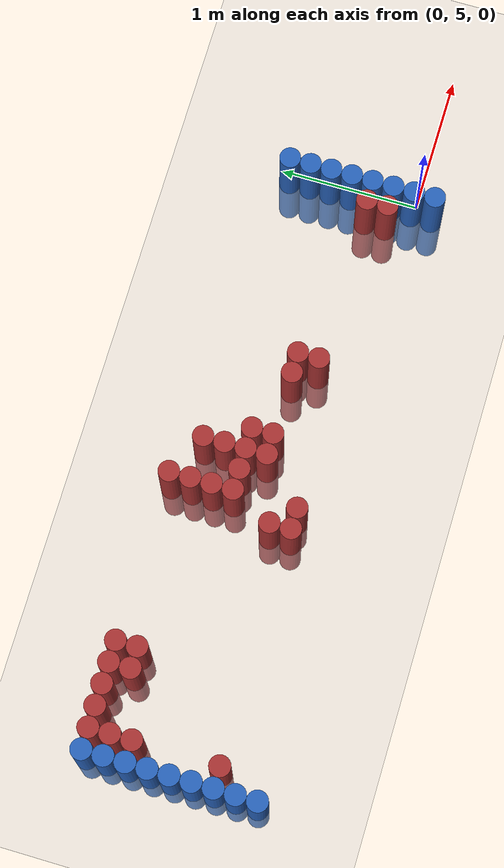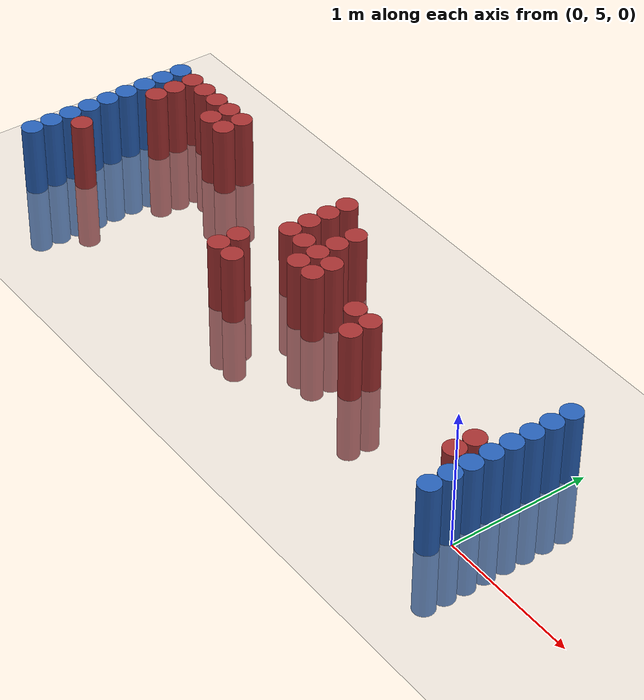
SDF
<sdf version="1.6">
 <world name="world_48">
  <model name="ground_plane">
   <static>1</static>
   <link name="link">
    <collision name="collision">
     <geometry><plane><normal>0 0 1</normal><size>100 100</size></plane></geometry>
     <surface><friction><ode><mu>100</mu><mu2>50</mu2></ode></friction></surface>
    </collision>
    <visual name="visual">
     <cast_shadows>0</cast_shadows>
     <geometry><plane><normal>0 0 1</normal><size>100 100</size></plane></geometry>
     <material>
      <script><uri>file://media/materials/scripts/gazebo.material</uri><name>Gazebo/Grey</name></script>
     </material>
    </visual>
   </link>
  </model>
  <model name="unit_cylinder_92">
   <static>1</static>
   <pose>-0.075000 4.875000 0.000000 0.000000 0.000000 0.000000</pose>
   <link name="link">
    <inertial>
     <mass>1</mass>
     <inertia><ixx>0.145833</ixx><ixy>0</ixy><ixz>0</ixz><iyy>0.145833</iyy><iyz>0</iyz><izz>0.125</izz></inertia>
    </inertial>
    <collision name="collision">
     <geometry><cylinder><radius>0.075000</radius><length>1</length></cylinder></geometry>
    </collision>
    <visual name="visual">
     <geometry><cylinder><radius>0.075000</radius><length>1</length></cylinder></geometry>
     <material>
      <ambient>0.152000 0.379000 0.720000 1</ambient>
      <diffuse>0.152000 0.379000 0.720000 1</diffuse>
     </material>
     <material>
      <script><name>Gazebo/Grey</name><uri>file://media/materials/scripts/gazebo.material</uri></script>
     </material>
    </visual>
   </link>
  </model>
  <model name="unit_cylinder_93">
   <static>1</static>
   <pose>-4.425000 4.875000 0.000000 0.000000 0.000000 0.000000</pose>
   <link name="link">
    <inertial>
     <mass>1</mass>
     <inertia><ixx>0.145833</ixx><ixy>0</ixy><ixz>0</ixz><iyy>0.145833</iyy><iyz>0</iyz><izz>0.125</izz></inertia>
    </inertial>
    <collision name="collision">
     <geometry><cylinder><radius>0.075000</radius><length>1</length></cylinder></geometry>
    </collision>
    <visual name="visual">
     <geometry><cylinder><radius>0.075000</radius><length>1</length></cylinder></geometry>
     <material>
      <ambient>0.152000 0.379000 0.720000 1</ambient>
      <diffuse>0.152000 0.379000 0.720000 1</diffuse>
     </material>
     <material>
      <script><name>Gazebo/Grey</name><uri>file://media/materials/scripts/gazebo.material</uri></script>
     </material>
    </visual>
   </link>
  </model>
  <model name="unit_cylinder_94">
   <static>1</static>
   <pose>-0.075000 5.025000 0.000000 0.000000 0.000000 0.000000</pose>
   <link name="link">
    <inertial>
     <mass>1</mass>
     <inertia><ixx>0.145833</ixx><ixy>0</ixy><ixz>0</ixz><iyy>0.145833</iyy><iyz>0</iyz><izz>0.125</izz></inertia>
    </inertial>
    <collision name="collision">
     <geometry><cylinder><radius>0.075000</radius><length>1</length></cylinder></geometry>
    </collision>
    <visual name="visual">
     <geometry><cylinder><radius>0.075000</radius><length>1</length></cylinder></geometry>
     <material>
      <ambient>0.152000 0.379000 0.720000 1</ambient>
      <diffuse>0.152000 0.379000 0.720000 1</diffuse>
     </material>
     <material>
      <script><name>Gazebo/Grey</name><uri>file://media/materials/scripts/gazebo.material</uri></script>
     </material>
    </visual>
   </link>
  </model>
  <model name="unit_cylinder_95">
   <static>1</static>
   <pose>-4.425000 5.025000 0.000000 0.000000 0.000000 0.000000</pose>
   <link name="link">
    <inertial>
     <mass>1</mass>
     <inertia><ixx>0.145833</ixx><ixy>0</ixy><ixz>0</ixz><iyy>0.145833</iyy><iyz>0</iyz><izz>0.125</izz></inertia>
    </inertial>
    <collision name="collision">
     <geometry><cylinder><radius>0.075000</radius><length>1</length></cylinder></geometry>
    </collision>
    <visual name="visual">
     <geometry><cylinder><radius>0.075000</radius><length>1</length></cylinder></geometry>
     <material>
      <ambient>0.152000 0.379000 0.720000 1</ambient>
      <diffuse>0.152000 0.379000 0.720000 1</diffuse>
     </material>
     <material>
      <script><name>Gazebo/Grey</name><uri>file://media/materials/scripts/gazebo.material</uri></script>
     </material>
    </visual>
   </link>
  </model>
  <model name="unit_cylinder_96">
   <static>1</static>
   <pose>-4.425000 5.175000 0.000000 0.000000 0.000000 0.000000</pose>
   <link name="link">
    <inertial>
     <mass>1</mass>
     <inertia><ixx>0.145833</ixx><ixy>0</ixy><ixz>0</ixz><iyy>0.145833</iyy><iyz>0</iyz><izz>0.125</izz></inertia>
    </inertial>
    <collision name="collision">
     <geometry><cylinder><radius>0.075000</radius><length>1</length></cylinder></geometry>
    </collision>
    <visual name="visual">
     <geometry><cylinder><radius>0.075000</radius><length>1</length></cylinder></geometry>
     <material>
      <ambient>0.152000 0.379000 0.720000 1</ambient>
      <diffuse>0.152000 0.379000 0.720000 1</diffuse>
     </material>
     <material>
      <script><name>Gazebo/Grey</name><uri>file://media/materials/scripts/gazebo.material</uri></script>
     </material>
    </visual>
   </link>
  </model>
  <model name="unit_cylinder_97">
   <static>1</static>
   <pose>-4.425000 5.325000 0.000000 0.000000 0.000000 0.000000</pose>
   <link name="link">
    <inertial>
     <mass>1</mass>
     <inertia><ixx>0.145833</ixx><ixy>0</ixy><ixz>0</ixz><iyy>0.145833</iyy><iyz>0</iyz><izz>0.125</izz></inertia>
    </inertial>
    <collision name="collision">
     <geometry><cylinder><radius>0.075000</radius><length>1</length></cylinder></geometry>
    </collision>
    <visual name="visual">
     <geometry><cylinder><radius>0.075000</radius><length>1</length></cylinder></geometry>
     <material>
      <ambient>0.152000 0.379000 0.720000 1</ambient>
      <diffuse>0.152000 0.379000 0.720000 1</diffuse>
     </material>
     <material>
      <script><name>Gazebo/Grey</name><uri>file://media/materials/scripts/gazebo.material</uri></script>
     </material>
    </visual>
   </link>
  </model>
  <model name="unit_cylinder_98">
   <static>1</static>
   <pose>-4.425000 5.475000 0.000000 0.000000 0.000000 0.000000</pose>
   <link name="link">
    <inertial>
     <mass>1</mass>
     <inertia><ixx>0.145833</ixx><ixy>0</ixy><ixz>0</ixz><iyy>0.145833</iyy><iyz>0</iyz><izz>0.125</izz></inertia>
    </inertial>
    <collision name="collision">
     <geometry><cylinder><radius>0.075000</radius><length>1</length></cylinder></geometry>
    </collision>
    <visual name="visual">
     <geometry><cylinder><radius>0.075000</radius><length>1</length></cylinder></geometry>
     <material>
      <ambient>0.152000 0.379000 0.720000 1</ambient>
      <diffuse>0.152000 0.379000 0.720000 1</diffuse>
     </material>
     <material>
      <script><name>Gazebo/Grey</name><uri>file://media/materials/scripts/gazebo.material</uri></script>
     </material>
    </visual>
   </link>
  </model>
  <model name="unit_cylinder_99">
   <static>1</static>
   <pose>-4.425000 5.625000 0.000000 0.000000 0.000000 0.000000</pose>
   <link name="link">
    <inertial>
     <mass>1</mass>
     <inertia><ixx>0.145833</ixx><ixy>0</ixy><ixz>0</ixz><iyy>0.145833</iyy><iyz>0</iyz><izz>0.125</izz></inertia>
    </inertial>
    <collision name="collision">
     <geometry><cylinder><radius>0.075000</radius><length>1</length></cylinder></geometry>
    </collision>
    <visual name="visual">
     <geometry><cylinder><radius>0.075000</radius><length>1</length></cylinder></geometry>
     <material>
      <ambient>0.152000 0.379000 0.720000 1</ambient>
      <diffuse>0.152000 0.379000 0.720000 1</diffuse>
     </material>
     <material>
      <script><name>Gazebo/Grey</name><uri>file://media/materials/scripts/gazebo.material</uri></script>
     </material>
    </visual>
   </link>
  </model>
  <model name="unit_cylinder_100">
   <static>1</static>
   <pose>-4.425000 5.775000 0.000000 0.000000 0.000000 0.000000</pose>
   <link name="link">
    <inertial>
     <mass>1</mass>
     <inertia><ixx>0.145833</ixx><ixy>0</ixy><ixz>0</ixz><iyy>0.145833</iyy><iyz>0</iyz><izz>0.125</izz></inertia>
    </inertial>
    <collision name="collision">
     <geometry><cylinder><radius>0.075000</radius><length>1</length></cylinder></geometry>
    </collision>
    <visual name="visual">
     <geometry><cylinder><radius>0.075000</radius><length>1</length></cylinder></geometry>
     <material>
      <ambient>0.152000 0.379000 0.720000 1</ambient>
      <diffuse>0.152000 0.379000 0.720000 1</diffuse>
     </material>
     <material>
      <script><name>Gazebo/Grey</name><uri>file://media/materials/scripts/gazebo.material</uri></script>
     </material>
    </visual>
   </link>
  </model>
  <model name="unit_cylinder_101">
   <static>1</static>
   <pose>-4.425000 5.925000 0.000000 0.000000 0.000000 0.000000</pose>
   <link name="link">
    <inertial>
     <mass>1</mass>
     <inertia><ixx>0.145833</ixx><ixy>0</ixy><ixz>0</ixz><iyy>0.145833</iyy><iyz>0</iyz><izz>0.125</izz></inertia>
    </inertial>
    <collision name="collision">
     <geometry><cylinder><radius>0.075000</radius><length>1</length></cylinder></geometry>
    </collision>
    <visual name="visual">
     <geometry><cylinder><radius>0.075000</radius><length>1</length></cylinder></geometry>
     <material>
      <ambient>0.152000 0.379000 0.720000 1</ambient>
      <diffuse>0.152000 0.379000 0.720000 1</diffuse>
     </material>
     <material>
      <script><name>Gazebo/Grey</name><uri>file://media/materials/scripts/gazebo.material</uri></script>
     </material>
    </visual>
   </link>
  </model>
  <model name="unit_cylinder_102">
   <static>1</static>
   <pose>-4.425000 6.075000 0.000000 0.000000 0.000000 0.000000</pose>
   <link name="link">
    <inertial>
     <mass>1</mass>
     <inertia><ixx>0.145833</ixx><ixy>0</ixy><ixz>0</ixz><iyy>0.145833</iyy><iyz>0</iyz><izz>0.125</izz></inertia>
    </inertial>
    <collision name="collision">
     <geometry><cylinder><radius>0.075000</radius><length>1</length></cylinder></geometry>
    </collision>
    <visual name="visual">
     <geometry><cylinder><radius>0.075000</radius><length>1</length></cylinder></geometry>
     <material>
      <ambient>0.152000 0.379000 0.720000 1</ambient>
      <diffuse>0.152000 0.379000 0.720000 1</diffuse>
     </material>
     <material>
      <script><name>Gazebo/Grey</name><uri>file://media/materials/scripts/gazebo.material</uri></script>
     </material>
    </visual>
   </link>
  </model>
  <model name="unit_cylinder_126">
   <static>1</static>
   <pose>-4.275000 5.175000 0.000000 0.000000 0.000000 0.000000</pose>
   <link name="link">
    <inertial>
     <mass>1</mass>
     <inertia><ixx>0.145833</ixx><ixy>0</ixy><ixz>0</ixz><iyy>0.145833</iyy><iyz>0</iyz><izz>0.125</izz></inertia>
    </inertial>
    <collision name="collision">
     <geometry><cylinder><radius>0.075000</radius><length>1</length></cylinder></geometry>
    </collision>
    <visual name="visual">
     <geometry><cylinder><radius>0.075000</radius><length>1</length></cylinder></geometry>
     <material>
      <ambient>0.648000 0.192000 0.192000 1</ambient>
      <diffuse>0.648000 0.192000 0.192000 1</diffuse>
     </material>
     <material>
      <script><name>Gazebo/Grey</name><uri>file://media/materials/scripts/gazebo.material</uri></script>
     </material>
    </visual>
   </link>
  </model>
  <model name="unit_cylinder_127">
   <static>1</static>
   <pose>-4.275000 5.775000 0.000000 0.000000 0.000000 0.000000</pose>
   <link name="link">
    <inertial>
     <mass>1</mass>
     <inertia><ixx>0.145833</ixx><ixy>0</ixy><ixz>0</ixz><iyy>0.145833</iyy><iyz>0</iyz><izz>0.125</izz></inertia>
    </inertial>
    <collision name="collision">
     <geometry><cylinder><radius>0.075000</radius><length>1</length></cylinder></geometry>
    </collision>
    <visual name="visual">
     <geometry><cylinder><radius>0.075000</radius><length>1</length></cylinder></geometry>
     <material>
      <ambient>0.648000 0.192000 0.192000 1</ambient>
      <diffuse>0.648000 0.192000 0.192000 1</diffuse>
     </material>
     <material>
      <script><name>Gazebo/Grey</name><uri>file://media/materials/scripts/gazebo.material</uri></script>
     </material>
    </visual>
   </link>
  </model>
  <model name="unit_cylinder_128">
   <static>1</static>
   <pose>-4.275000 5.925000 0.000000 0.000000 0.000000 0.000000</pose>
   <link name="link">
    <inertial>
     <mass>1</mass>
     <inertia><ixx>0.145833</ixx><ixy>0</ixy><ixz>0</ixz><iyy>0.145833</iyy><iyz>0</iyz><izz>0.125</izz></inertia>
    </inertial>
    <collision name="collision">
     <geometry><cylinder><radius>0.075000</radius><length>1</length></cylinder></geometry>
    </collision>
    <visual name="visual">
     <geometry><cylinder><radius>0.075000</radius><length>1</length></cylinder></geometry>
     <material>
      <ambient>0.648000 0.192000 0.192000 1</ambient>
      <diffuse>0.648000 0.192000 0.192000 1</diffuse>
     </material>
     <material>
      <script><name>Gazebo/Grey</name><uri>file://media/materials/scripts/gazebo.material</uri></script>
     </material>
    </visual>
   </link>
  </model>
  <model name="unit_cylinder_129">
   <static>1</static>
   <pose>-4.275000 6.075000 0.000000 0.000000 0.000000 0.000000</pose>
   <link name="link">
    <inertial>
     <mass>1</mass>
     <inertia><ixx>0.145833</ixx><ixy>0</ixy><ixz>0</ixz><iyy>0.145833</iyy><iyz>0</iyz><izz>0.125</izz></inertia>
    </inertial>
    <collision name="collision">
     <geometry><cylinder><radius>0.075000</radius><length>1</length></cylinder></geometry>
    </collision>
    <visual name="visual">
     <geometry><cylinder><radius>0.075000</radius><length>1</length></cylinder></geometry>
     <material>
      <ambient>0.648000 0.192000 0.192000 1</ambient>
      <diffuse>0.648000 0.192000 0.192000 1</diffuse>
     </material>
     <material>
      <script><name>Gazebo/Grey</name><uri>file://media/materials/scripts/gazebo.material</uri></script>
     </material>
    </visual>
   </link>
  </model>
  <model name="unit_cylinder_132">
   <static>1</static>
   <pose>-4.125000 6.075000 0.000000 0.000000 0.000000 0.000000</pose>
   <link name="link">
    <inertial>
     <mass>1</mass>
     <inertia><ixx>0.145833</ixx><ixy>0</ixy><ixz>0</ixz><iyy>0.145833</iyy><iyz>0</iyz><izz>0.125</izz></inertia>
    </inertial>
    <collision name="collision">
     <geometry><cylinder><radius>0.075000</radius><length>1</length></cylinder></geometry>
    </collision>
    <visual name="visual">
     <geometry><cylinder><radius>0.075000</radius><length>1</length></cylinder></geometry>
     <material>
      <ambient>0.648000 0.192000 0.192000 1</ambient>
      <diffuse>0.648000 0.192000 0.192000 1</diffuse>
     </material>
     <material>
      <script><name>Gazebo/Grey</name><uri>file://media/materials/scripts/gazebo.material</uri></script>
     </material>
    </visual>
   </link>
  </model>
  <model name="unit_cylinder_134">
   <static>1</static>
   <pose>-3.975000 6.075000 0.000000 0.000000 0.000000 0.000000</pose>
   <link name="link">
    <inertial>
     <mass>1</mass>
     <inertia><ixx>0.145833</ixx><ixy>0</ixy><ixz>0</ixz><iyy>0.145833</iyy><iyz>0</iyz><izz>0.125</izz></inertia>
    </inertial>
    <collision name="collision">
     <geometry><cylinder><radius>0.075000</radius><length>1</length></cylinder></geometry>
    </collision>
    <visual name="visual">
     <geometry><cylinder><radius>0.075000</radius><length>1</length></cylinder></geometry>
     <material>
      <ambient>0.648000 0.192000 0.192000 1</ambient>
      <diffuse>0.648000 0.192000 0.192000 1</diffuse>
     </material>
     <material>
      <script><name>Gazebo/Grey</name><uri>file://media/materials/scripts/gazebo.material</uri></script>
     </material>
    </visual>
   </link>
  </model>
  <model name="unit_cylinder_142">
   <static>1</static>
   <pose>-3.825000 5.925000 0.000000 0.000000 0.000000 0.000000</pose>
   <link name="link">
    <inertial>
     <mass>1</mass>
     <inertia><ixx>0.145833</ixx><ixy>0</ixy><ixz>0</ixz><iyy>0.145833</iyy><iyz>0</iyz><izz>0.125</izz></inertia>
    </inertial>
    <collision name="collision">
     <geometry><cylinder><radius>0.075000</radius><length>1</length></cylinder></geometry>
    </collision>
    <visual name="visual">
     <geometry><cylinder><radius>0.075000</radius><length>1</length></cylinder></geometry>
     <material>
      <ambient>0.648000 0.192000 0.192000 1</ambient>
      <diffuse>0.648000 0.192000 0.192000 1</diffuse>
     </material>
     <material>
      <script><name>Gazebo/Grey</name><uri>file://media/materials/scripts/gazebo.material</uri></script>
     </material>
    </visual>
   </link>
  </model>
  <model name="unit_cylinder_143">
   <static>1</static>
   <pose>-3.825000 6.075000 0.000000 0.000000 0.000000 0.000000</pose>
   <link name="link">
    <inertial>
     <mass>1</mass>
     <inertia><ixx>0.145833</ixx><ixy>0</ixy><ixz>0</ixz><iyy>0.145833</iyy><iyz>0</iyz><izz>0.125</izz></inertia>
    </inertial>
    <collision name="collision">
     <geometry><cylinder><radius>0.075000</radius><length>1</length></cylinder></geometry>
    </collision>
    <visual name="visual">
     <geometry><cylinder><radius>0.075000</radius><length>1</length></cylinder></geometry>
     <material>
      <ambient>0.648000 0.192000 0.192000 1</ambient>
      <diffuse>0.648000 0.192000 0.192000 1</diffuse>
     </material>
     <material>
      <script><name>Gazebo/Grey</name><uri>file://media/materials/scripts/gazebo.material</uri></script>
     </material>
    </visual>
   </link>
  </model>
  <model name="unit_cylinder_150">
   <static>1</static>
   <pose>-3.675000 5.925000 0.000000 0.000000 0.000000 0.000000</pose>
   <link name="link">
    <inertial>
     <mass>1</mass>
     <inertia><ixx>0.145833</ixx><ixy>0</ixy><ixz>0</ixz><iyy>0.145833</iyy><iyz>0</iyz><izz>0.125</izz></inertia>
    </inertial>
    <collision name="collision">
     <geometry><cylinder><radius>0.075000</radius><length>1</length></cylinder></geometry>
    </collision>
    <visual name="visual">
     <geometry><cylinder><radius>0.075000</radius><length>1</length></cylinder></geometry>
     <material>
      <ambient>0.648000 0.192000 0.192000 1</ambient>
      <diffuse>0.648000 0.192000 0.192000 1</diffuse>
     </material>
     <material>
      <script><name>Gazebo/Grey</name><uri>file://media/materials/scripts/gazebo.material</uri></script>
     </material>
    </visual>
   </link>
  </model>
  <model name="unit_cylinder_151">
   <static>1</static>
   <pose>-3.675000 6.075000 0.000000 0.000000 0.000000 0.000000</pose>
   <link name="link">
    <inertial>
     <mass>1</mass>
     <inertia><ixx>0.145833</ixx><ixy>0</ixy><ixz>0</ixz><iyy>0.145833</iyy><iyz>0</iyz><izz>0.125</izz></inertia>
    </inertial>
    <collision name="collision">
     <geometry><cylinder><radius>0.075000</radius><length>1</length></cylinder></geometry>
    </collision>
    <visual name="visual">
     <geometry><cylinder><radius>0.075000</radius><length>1</length></cylinder></geometry>
     <material>
      <ambient>0.648000 0.192000 0.192000 1</ambient>
      <diffuse>0.648000 0.192000 0.192000 1</diffuse>
     </material>
     <material>
      <script><name>Gazebo/Grey</name><uri>file://media/materials/scripts/gazebo.material</uri></script>
     </material>
    </visual>
   </link>
  </model>
  <model name="unit_cylinder_165">
   <static>1</static>
   <pose>-2.625000 5.175000 0.000000 0.000000 0.000000 0.000000</pose>
   <link name="link">
    <inertial>
     <mass>1</mass>
     <inertia><ixx>0.145833</ixx><ixy>0</ixy><ixz>0</ixz><iyy>0.145833</iyy><iyz>0</iyz><izz>0.125</izz></inertia>
    </inertial>
    <collision name="collision">
     <geometry><cylinder><radius>0.075000</radius><length>1</length></cylinder></geometry>
    </collision>
    <visual name="visual">
     <geometry><cylinder><radius>0.075000</radius><length>1</length></cylinder></geometry>
     <material>
      <ambient>0.648000 0.192000 0.192000 1</ambient>
      <diffuse>0.648000 0.192000 0.192000 1</diffuse>
     </material>
     <material>
      <script><name>Gazebo/Grey</name><uri>file://media/materials/scripts/gazebo.material</uri></script>
     </material>
    </visual>
   </link>
  </model>
  <model name="unit_cylinder_166">
   <static>1</static>
   <pose>-2.625000 5.325000 0.000000 0.000000 0.000000 0.000000</pose>
   <link name="link">
    <inertial>
     <mass>1</mass>
     <inertia><ixx>0.145833</ixx><ixy>0</ixy><ixz>0</ixz><iyy>0.145833</iyy><iyz>0</iyz><izz>0.125</izz></inertia>
    </inertial>
    <collision name="collision">
     <geometry><cylinder><radius>0.075000</radius><length>1</length></cylinder></geometry>
    </collision>
    <visual name="visual">
     <geometry><cylinder><radius>0.075000</radius><length>1</length></cylinder></geometry>
     <material>
      <ambient>0.648000 0.192000 0.192000 1</ambient>
      <diffuse>0.648000 0.192000 0.192000 1</diffuse>
     </material>
     <material>
      <script><name>Gazebo/Grey</name><uri>file://media/materials/scripts/gazebo.material</uri></script>
     </material>
    </visual>
   </link>
  </model>
  <model name="unit_cylinder_167">
   <static>1</static>
   <pose>-2.475000 5.175000 0.000000 0.000000 0.000000 0.000000</pose>
   <link name="link">
    <inertial>
     <mass>1</mass>
     <inertia><ixx>0.145833</ixx><ixy>0</ixy><ixz>0</ixz><iyy>0.145833</iyy><iyz>0</iyz><izz>0.125</izz></inertia>
    </inertial>
    <collision name="collision">
     <geometry><cylinder><radius>0.075000</radius><length>1</length></cylinder></geometry>
    </collision>
    <visual name="visual">
     <geometry><cylinder><radius>0.075000</radius><length>1</length></cylinder></geometry>
     <material>
      <ambient>0.648000 0.192000 0.192000 1</ambient>
      <diffuse>0.648000 0.192000 0.192000 1</diffuse>
     </material>
     <material>
      <script><name>Gazebo/Grey</name><uri>file://media/materials/scripts/gazebo.material</uri></script>
     </material>
    </visual>
   </link>
  </model>
  <model name="unit_cylinder_168">
   <static>1</static>
   <pose>-2.475000 5.625000 0.000000 0.000000 0.000000 0.000000</pose>
   <link name="link">
    <inertial>
     <mass>1</mass>
     <inertia><ixx>0.145833</ixx><ixy>0</ixy><ixz>0</ixz><iyy>0.145833</iyy><iyz>0</iyz><izz>0.125</izz></inertia>
    </inertial>
    <collision name="collision">
     <geometry><cylinder><radius>0.075000</radius><length>1</length></cylinder></geometry>
    </collision>
    <visual name="visual">
     <geometry><cylinder><radius>0.075000</radius><length>1</length></cylinder></geometry>
     <material>
      <ambient>0.648000 0.192000 0.192000 1</ambient>
      <diffuse>0.648000 0.192000 0.192000 1</diffuse>
     </material>
     <material>
      <script><name>Gazebo/Grey</name><uri>file://media/materials/scripts/gazebo.material</uri></script>
     </material>
    </visual>
   </link>
  </model>
  <model name="unit_cylinder_169">
   <static>1</static>
   <pose>-2.475000 5.775000 0.000000 0.000000 0.000000 0.000000</pose>
   <link name="link">
    <inertial>
     <mass>1</mass>
     <inertia><ixx>0.145833</ixx><ixy>0</ixy><ixz>0</ixz><iyy>0.145833</iyy><iyz>0</iyz><izz>0.125</izz></inertia>
    </inertial>
    <collision name="collision">
     <geometry><cylinder><radius>0.075000</radius><length>1</length></cylinder></geometry>
    </collision>
    <visual name="visual">
     <geometry><cylinder><radius>0.075000</radius><length>1</length></cylinder></geometry>
     <material>
      <ambient>0.648000 0.192000 0.192000 1</ambient>
      <diffuse>0.648000 0.192000 0.192000 1</diffuse>
     </material>
     <material>
      <script><name>Gazebo/Grey</name><uri>file://media/materials/scripts/gazebo.material</uri></script>
     </material>
    </visual>
   </link>
  </model>
  <model name="unit_cylinder_170">
   <static>1</static>
   <pose>-2.475000 5.925000 0.000000 0.000000 0.000000 0.000000</pose>
   <link name="link">
    <inertial>
     <mass>1</mass>
     <inertia><ixx>0.145833</ixx><ixy>0</ixy><ixz>0</ixz><iyy>0.145833</iyy><iyz>0</iyz><izz>0.125</izz></inertia>
    </inertial>
    <collision name="collision">
     <geometry><cylinder><radius>0.075000</radius><length>1</length></cylinder></geometry>
    </collision>
    <visual name="visual">
     <geometry><cylinder><radius>0.075000</radius><length>1</length></cylinder></geometry>
     <material>
      <ambient>0.648000 0.192000 0.192000 1</ambient>
      <diffuse>0.648000 0.192000 0.192000 1</diffuse>
     </material>
     <material>
      <script><name>Gazebo/Grey</name><uri>file://media/materials/scripts/gazebo.material</uri></script>
     </material>
    </visual>
   </link>
  </model>
  <model name="unit_cylinder_171">
   <static>1</static>
   <pose>-2.475000 6.075000 0.000000 0.000000 0.000000 0.000000</pose>
   <link name="link">
    <inertial>
     <mass>1</mass>
     <inertia><ixx>0.145833</ixx><ixy>0</ixy><ixz>0</ixz><iyy>0.145833</iyy><iyz>0</iyz><izz>0.125</izz></inertia>
    </inertial>
    <collision name="collision">
     <geometry><cylinder><radius>0.075000</radius><length>1</length></cylinder></geometry>
    </collision>
    <visual name="visual">
     <geometry><cylinder><radius>0.075000</radius><length>1</length></cylinder></geometry>
     <material>
      <ambient>0.648000 0.192000 0.192000 1</ambient>
      <diffuse>0.648000 0.192000 0.192000 1</diffuse>
     </material>
     <material>
      <script><name>Gazebo/Grey</name><uri>file://media/materials/scripts/gazebo.material</uri></script>
     </material>
    </visual>
   </link>
  </model>
  <model name="unit_cylinder_172">
   <static>1</static>
   <pose>-2.325000 5.625000 0.000000 0.000000 0.000000 0.000000</pose>
   <link name="link">
    <inertial>
     <mass>1</mass>
     <inertia><ixx>0.145833</ixx><ixy>0</ixy><ixz>0</ixz><iyy>0.145833</iyy><iyz>0</iyz><izz>0.125</izz></inertia>
    </inertial>
    <collision name="collision">
     <geometry><cylinder><radius>0.075000</radius><length>1</length></cylinder></geometry>
    </collision>
    <visual name="visual">
     <geometry><cylinder><radius>0.075000</radius><length>1</length></cylinder></geometry>
     <material>
      <ambient>0.648000 0.192000 0.192000 1</ambient>
      <diffuse>0.648000 0.192000 0.192000 1</diffuse>
     </material>
     <material>
      <script><name>Gazebo/Grey</name><uri>file://media/materials/scripts/gazebo.material</uri></script>
     </material>
    </visual>
   </link>
  </model>
  <model name="unit_cylinder_175">
   <static>1</static>
   <pose>-2.175000 5.475000 0.000000 0.000000 0.000000 0.000000</pose>
   <link name="link">
    <inertial>
     <mass>1</mass>
     <inertia><ixx>0.145833</ixx><ixy>0</ixy><ixz>0</ixz><iyy>0.145833</iyy><iyz>0</iyz><izz>0.125</izz></inertia>
    </inertial>
    <collision name="collision">
     <geometry><cylinder><radius>0.075000</radius><length>1</length></cylinder></geometry>
    </collision>
    <visual name="visual">
     <geometry><cylinder><radius>0.075000</radius><length>1</length></cylinder></geometry>
     <material>
      <ambient>0.648000 0.192000 0.192000 1</ambient>
      <diffuse>0.648000 0.192000 0.192000 1</diffuse>
     </material>
     <material>
      <script><name>Gazebo/Grey</name><uri>file://media/materials/scripts/gazebo.material</uri></script>
     </material>
    </visual>
   </link>
  </model>
  <model name="unit_cylinder_176">
   <static>1</static>
   <pose>-2.175000 5.625000 0.000000 0.000000 0.000000 0.000000</pose>
   <link name="link">
    <inertial>
     <mass>1</mass>
     <inertia><ixx>0.145833</ixx><ixy>0</ixy><ixz>0</ixz><iyy>0.145833</iyy><iyz>0</iyz><izz>0.125</izz></inertia>
    </inertial>
    <collision name="collision">
     <geometry><cylinder><radius>0.075000</radius><length>1</length></cylinder></geometry>
    </collision>
    <visual name="visual">
     <geometry><cylinder><radius>0.075000</radius><length>1</length></cylinder></geometry>
     <material>
      <ambient>0.648000 0.192000 0.192000 1</ambient>
      <diffuse>0.648000 0.192000 0.192000 1</diffuse>
     </material>
     <material>
      <script><name>Gazebo/Grey</name><uri>file://media/materials/scripts/gazebo.material</uri></script>
     </material>
    </visual>
   </link>
  </model>
  <model name="unit_cylinder_177">
   <static>1</static>
   <pose>-2.175000 5.775000 0.000000 0.000000 0.000000 0.000000</pose>
   <link name="link">
    <inertial>
     <mass>1</mass>
     <inertia><ixx>0.145833</ixx><ixy>0</ixy><ixz>0</ixz><iyy>0.145833</iyy><iyz>0</iyz><izz>0.125</izz></inertia>
    </inertial>
    <collision name="collision">
     <geometry><cylinder><radius>0.075000</radius><length>1</length></cylinder></geometry>
    </collision>
    <visual name="visual">
     <geometry><cylinder><radius>0.075000</radius><length>1</length></cylinder></geometry>
     <material>
      <ambient>0.648000 0.192000 0.192000 1</ambient>
      <diffuse>0.648000 0.192000 0.192000 1</diffuse>
     </material>
     <material>
      <script><name>Gazebo/Grey</name><uri>file://media/materials/scripts/gazebo.material</uri></script>
     </material>
    </visual>
   </link>
  </model>
  <model name="unit_cylinder_178">
   <static>1</static>
   <pose>-2.175000 5.925000 0.000000 0.000000 0.000000 0.000000</pose>
   <link name="link">
    <inertial>
     <mass>1</mass>
     <inertia><ixx>0.145833</ixx><ixy>0</ixy><ixz>0</ixz><iyy>0.145833</iyy><iyz>0</iyz><izz>0.125</izz></inertia>
    </inertial>
    <collision name="collision">
     <geometry><cylinder><radius>0.075000</radius><length>1</length></cylinder></geometry>
    </collision>
    <visual name="visual">
     <geometry><cylinder><radius>0.075000</radius><length>1</length></cylinder></geometry>
     <material>
      <ambient>0.648000 0.192000 0.192000 1</ambient>
      <diffuse>0.648000 0.192000 0.192000 1</diffuse>
     </material>
     <material>
      <script><name>Gazebo/Grey</name><uri>file://media/materials/scripts/gazebo.material</uri></script>
     </material>
    </visual>
   </link>
  </model>
  <model name="unit_cylinder_183">
   <static>1</static>
   <pose>-2.025000 5.475000 0.000000 0.000000 0.000000 0.000000</pose>
   <link name="link">
    <inertial>
     <mass>1</mass>
     <inertia><ixx>0.145833</ixx><ixy>0</ixy><ixz>0</ixz><iyy>0.145833</iyy><iyz>0</iyz><izz>0.125</izz></inertia>
    </inertial>
    <collision name="collision">
     <geometry><cylinder><radius>0.075000</radius><length>1</length></cylinder></geometry>
    </collision>
    <visual name="visual">
     <geometry><cylinder><radius>0.075000</radius><length>1</length></cylinder></geometry>
     <material>
      <ambient>0.648000 0.192000 0.192000 1</ambient>
      <diffuse>0.648000 0.192000 0.192000 1</diffuse>
     </material>
     <material>
      <script><name>Gazebo/Grey</name><uri>file://media/materials/scripts/gazebo.material</uri></script>
     </material>
    </visual>
   </link>
  </model>
  <model name="unit_cylinder_184">
   <static>1</static>
   <pose>-2.025000 5.625000 0.000000 0.000000 0.000000 0.000000</pose>
   <link name="link">
    <inertial>
     <mass>1</mass>
     <inertia><ixx>0.145833</ixx><ixy>0</ixy><ixz>0</ixz><iyy>0.145833</iyy><iyz>0</iyz><izz>0.125</izz></inertia>
    </inertial>
    <collision name="collision">
     <geometry><cylinder><radius>0.075000</radius><length>1</length></cylinder></geometry>
    </collision>
    <visual name="visual">
     <geometry><cylinder><radius>0.075000</radius><length>1</length></cylinder></geometry>
     <material>
      <ambient>0.648000 0.192000 0.192000 1</ambient>
      <diffuse>0.648000 0.192000 0.192000 1</diffuse>
     </material>
     <material>
      <script><name>Gazebo/Grey</name><uri>file://media/materials/scripts/gazebo.material</uri></script>
     </material>
    </visual>
   </link>
  </model>
  <model name="unit_cylinder_205">
   <static>1</static>
   <pose>-1.575000 5.475000 0.000000 0.000000 0.000000 0.000000</pose>
   <link name="link">
    <inertial>
     <mass>1</mass>
     <inertia><ixx>0.145833</ixx><ixy>0</ixy><ixz>0</ixz><iyy>0.145833</iyy><iyz>0</iyz><izz>0.125</izz></inertia>
    </inertial>
    <collision name="collision">
     <geometry><cylinder><radius>0.075000</radius><length>1</length></cylinder></geometry>
    </collision>
    <visual name="visual">
     <geometry><cylinder><radius>0.075000</radius><length>1</length></cylinder></geometry>
     <material>
      <ambient>0.648000 0.192000 0.192000 1</ambient>
      <diffuse>0.648000 0.192000 0.192000 1</diffuse>
     </material>
     <material>
      <script><name>Gazebo/Grey</name><uri>file://media/materials/scripts/gazebo.material</uri></script>
     </material>
    </visual>
   </link>
  </model>
  <model name="unit_cylinder_210">
   <static>1</static>
   <pose>-1.425000 5.325000 0.000000 0.000000 0.000000 0.000000</pose>
   <link name="link">
    <inertial>
     <mass>1</mass>
     <inertia><ixx>0.145833</ixx><ixy>0</ixy><ixz>0</ixz><iyy>0.145833</iyy><iyz>0</iyz><izz>0.125</izz></inertia>
    </inertial>
    <collision name="collision">
     <geometry><cylinder><radius>0.075000</radius><length>1</length></cylinder></geometry>
    </collision>
    <visual name="visual">
     <geometry><cylinder><radius>0.075000</radius><length>1</length></cylinder></geometry>
     <material>
      <ambient>0.648000 0.192000 0.192000 1</ambient>
      <diffuse>0.648000 0.192000 0.192000 1</diffuse>
     </material>
     <material>
      <script><name>Gazebo/Grey</name><uri>file://media/materials/scripts/gazebo.material</uri></script>
     </material>
    </visual>
   </link>
  </model>
  <model name="unit_cylinder_211">
   <static>1</static>
   <pose>-1.425000 5.475000 0.000000 0.000000 0.000000 0.000000</pose>
   <link name="link">
    <inertial>
     <mass>1</mass>
     <inertia><ixx>0.145833</ixx><ixy>0</ixy><ixz>0</ixz><iyy>0.145833</iyy><iyz>0</iyz><izz>0.125</izz></inertia>
    </inertial>
    <collision name="collision">
     <geometry><cylinder><radius>0.075000</radius><length>1</length></cylinder></geometry>
    </collision>
    <visual name="visual">
     <geometry><cylinder><radius>0.075000</radius><length>1</length></cylinder></geometry>
     <material>
      <ambient>0.648000 0.192000 0.192000 1</ambient>
      <diffuse>0.648000 0.192000 0.192000 1</diffuse>
     </material>
     <material>
      <script><name>Gazebo/Grey</name><uri>file://media/materials/scripts/gazebo.material</uri></script>
     </material>
    </visual>
   </link>
  </model>
  <model name="unit_cylinder_231">
   <static>1</static>
   <pose>-0.225000 5.175000 0.000000 0.000000 0.000000 0.000000</pose>
   <link name="link">
    <inertial>
     <mass>1</mass>
     <inertia><ixx>0.145833</ixx><ixy>0</ixy><ixz>0</ixz><iyy>0.145833</iyy><iyz>0</iyz><izz>0.125</izz></inertia>
    </inertial>
    <collision name="collision">
     <geometry><cylinder><radius>0.075000</radius><length>1</length></cylinder></geometry>
    </collision>
    <visual name="visual">
     <geometry><cylinder><radius>0.075000</radius><length>1</length></cylinder></geometry>
     <material>
      <ambient>0.648000 0.192000 0.192000 1</ambient>
      <diffuse>0.648000 0.192000 0.192000 1</diffuse>
     </material>
     <material>
      <script><name>Gazebo/Grey</name><uri>file://media/materials/scripts/gazebo.material</uri></script>
     </material>
    </visual>
   </link>
  </model>
  <model name="unit_cylinder_232">
   <static>1</static>
   <pose>-0.225000 5.325000 0.000000 0.000000 0.000000 0.000000</pose>
   <link name="link">
    <inertial>
     <mass>1</mass>
     <inertia><ixx>0.145833</ixx><ixy>0</ixy><ixz>0</ixz><iyy>0.145833</iyy><iyz>0</iyz><izz>0.125</izz></inertia>
    </inertial>
    <collision name="collision">
     <geometry><cylinder><radius>0.075000</radius><length>1</length></cylinder></geometry>
    </collision>
    <visual name="visual">
     <geometry><cylinder><radius>0.075000</radius><length>1</length></cylinder></geometry>
     <material>
      <ambient>0.648000 0.192000 0.192000 1</ambient>
      <diffuse>0.648000 0.192000 0.192000 1</diffuse>
     </material>
     <material>
      <script><name>Gazebo/Grey</name><uri>file://media/materials/scripts/gazebo.material</uri></script>
     </material>
    </visual>
   </link>
  </model>
  <model name="unit_cylinder_246">
   <static>1</static>
   <pose>-0.075000 5.175000 0.000000 0.000000 0.000000 0.000000</pose>
   <link name="link">
    <inertial>
     <mass>1</mass>
     <inertia><ixx>0.145833</ixx><ixy>0</ixy><ixz>0</ixz><iyy>0.145833</iyy><iyz>0</iyz><izz>0.125</izz></inertia>
    </inertial>
    <collision name="collision">
     <geometry><cylinder><radius>0.075000</radius><length>1</length></cylinder></geometry>
    </collision>
    <visual name="visual">
     <geometry><cylinder><radius>0.075000</radius><length>1</length></cylinder></geometry>
     <material>
      <ambient>0.152000 0.379000 0.720000 1</ambient>
      <diffuse>0.152000 0.379000 0.720000 1</diffuse>
     </material>
     <material>
      <script><name>Gazebo/Grey</name><uri>file://media/materials/scripts/gazebo.material</uri></script>
     </material>
    </visual>
   </link>
  </model>
  <model name="unit_cylinder_247">
   <static>1</static>
   <pose>-0.075000 5.325000 0.000000 0.000000 0.000000 0.000000</pose>
   <link name="link">
    <inertial>
     <mass>1</mass>
     <inertia><ixx>0.145833</ixx><ixy>0</ixy><ixz>0</ixz><iyy>0.145833</iyy><iyz>0</iyz><izz>0.125</izz></inertia>
    </inertial>
    <collision name="collision">
     <geometry><cylinder><radius>0.075000</radius><length>1</length></cylinder></geometry>
    </collision>
    <visual name="visual">
     <geometry><cylinder><radius>0.075000</radius><length>1</length></cylinder></geometry>
     <material>
      <ambient>0.152000 0.379000 0.720000 1</ambient>
      <diffuse>0.152000 0.379000 0.720000 1</diffuse>
     </material>
     <material>
      <script><name>Gazebo/Grey</name><uri>file://media/materials/scripts/gazebo.material</uri></script>
     </material>
    </visual>
   </link>
  </model>
  <model name="unit_cylinder_248">
   <static>1</static>
   <pose>-0.075000 5.475000 0.000000 0.000000 0.000000 0.000000</pose>
   <link name="link">
    <inertial>
     <mass>1</mass>
     <inertia><ixx>0.145833</ixx><ixy>0</ixy><ixz>0</ixz><iyy>0.145833</iyy><iyz>0</iyz><izz>0.125</izz></inertia>
    </inertial>
    <collision name="collision">
     <geometry><cylinder><radius>0.075000</radius><length>1</length></cylinder></geometry>
    </collision>
    <visual name="visual">
     <geometry><cylinder><radius>0.075000</radius><length>1</length></cylinder></geometry>
     <material>
      <ambient>0.152000 0.379000 0.720000 1</ambient>
      <diffuse>0.152000 0.379000 0.720000 1</diffuse>
     </material>
     <material>
      <script><name>Gazebo/Grey</name><uri>file://media/materials/scripts/gazebo.material</uri></script>
     </material>
    </visual>
   </link>
  </model>
  <model name="unit_cylinder_249">
   <static>1</static>
   <pose>-0.075000 5.625000 0.000000 0.000000 0.000000 0.000000</pose>
   <link name="link">
    <inertial>
     <mass>1</mass>
     <inertia><ixx>0.145833</ixx><ixy>0</ixy><ixz>0</ixz><iyy>0.145833</iyy><iyz>0</iyz><izz>0.125</izz></inertia>
    </inertial>
    <collision name="collision">
     <geometry><cylinder><radius>0.075000</radius><length>1</length></cylinder></geometry>
    </collision>
    <visual name="visual">
     <geometry><cylinder><radius>0.075000</radius><length>1</length></cylinder></geometry>
     <material>
      <ambient>0.152000 0.379000 0.720000 1</ambient>
      <diffuse>0.152000 0.379000 0.720000 1</diffuse>
     </material>
     <material>
      <script><name>Gazebo/Grey</name><uri>file://media/materials/scripts/gazebo.material</uri></script>
     </material>
    </visual>
   </link>
  </model>
  <model name="unit_cylinder_250">
   <static>1</static>
   <pose>-0.075000 5.775000 0.000000 0.000000 0.000000 0.000000</pose>
   <link name="link">
    <inertial>
     <mass>1</mass>
     <inertia><ixx>0.145833</ixx><ixy>0</ixy><ixz>0</ixz><iyy>0.145833</iyy><iyz>0</iyz><izz>0.125</izz></inertia>
    </inertial>
    <collision name="collision">
     <geometry><cylinder><radius>0.075000</radius><length>1</length></cylinder></geometry>
    </collision>
    <visual name="visual">
     <geometry><cylinder><radius>0.075000</radius><length>1</length></cylinder></geometry>
     <material>
      <ambient>0.152000 0.379000 0.720000 1</ambient>
      <diffuse>0.152000 0.379000 0.720000 1</diffuse>
     </material>
     <material>
      <script><name>Gazebo/Grey</name><uri>file://media/materials/scripts/gazebo.material</uri></script>
     </material>
    </visual>
   </link>
  </model>
  <model name="unit_cylinder_251">
   <static>1</static>
   <pose>-0.075000 5.925000 0.000000 0.000000 0.000000 0.000000</pose>
   <link name="link">
    <inertial>
     <mass>1</mass>
     <inertia><ixx>0.145833</ixx><ixy>0</ixy><ixz>0</ixz><iyy>0.145833</iyy><iyz>0</iyz><izz>0.125</izz></inertia>
    </inertial>
    <collision name="collision">
     <geometry><cylinder><radius>0.075000</radius><length>1</length></cylinder></geometry>
    </collision>
    <visual name="visual">
     <geometry><cylinder><radius>0.075000</radius><length>1</length></cylinder></geometry>
     <material>
      <ambient>0.152000 0.379000 0.720000 1</ambient>
      <diffuse>0.152000 0.379000 0.720000 1</diffuse>
     </material>
     <material>
      <script><name>Gazebo/Grey</name><uri>file://media/materials/scripts/gazebo.material</uri></script>
     </material>
    </visual>
   </link>
  </model>
 </world>
</sdf>
